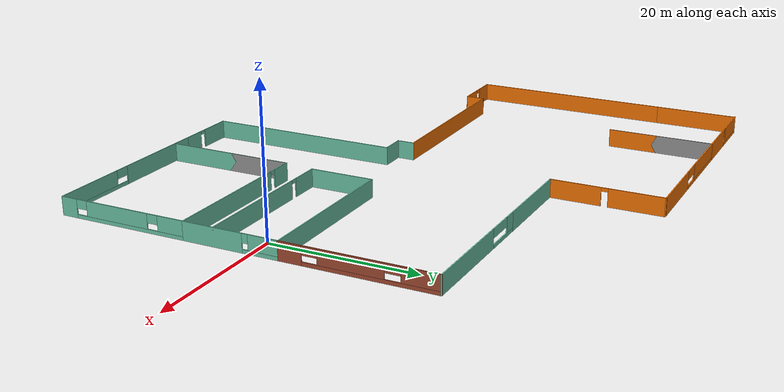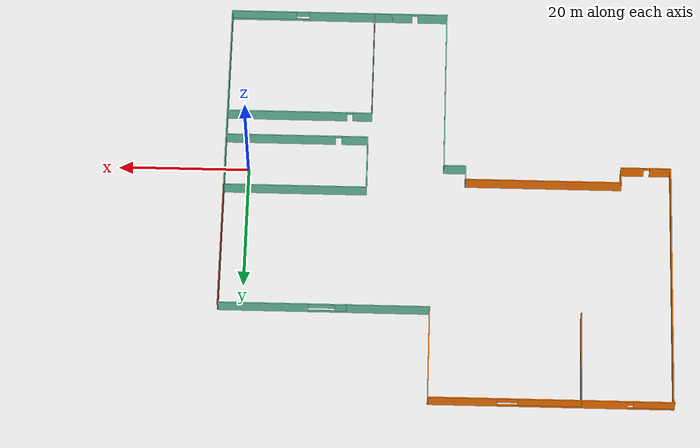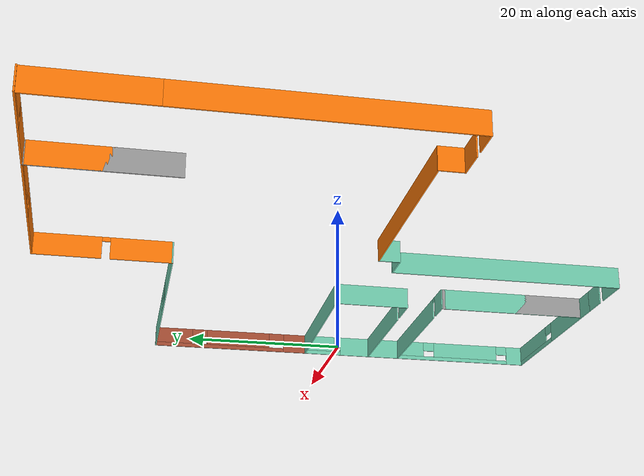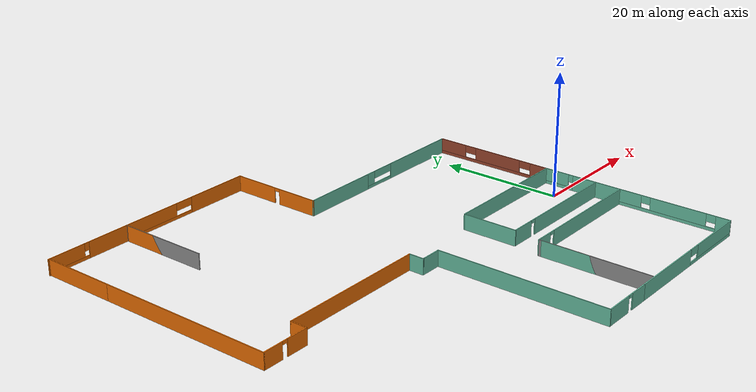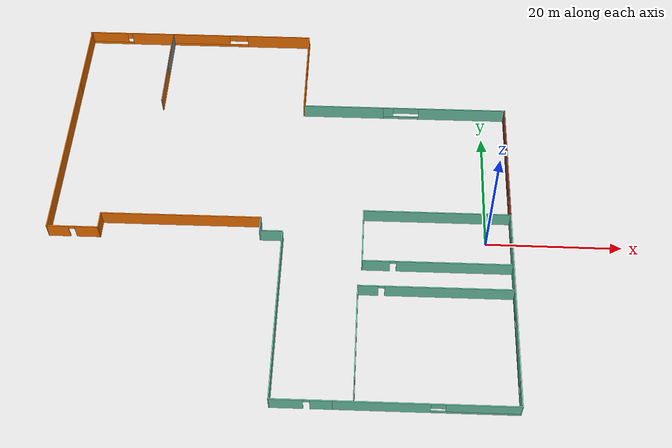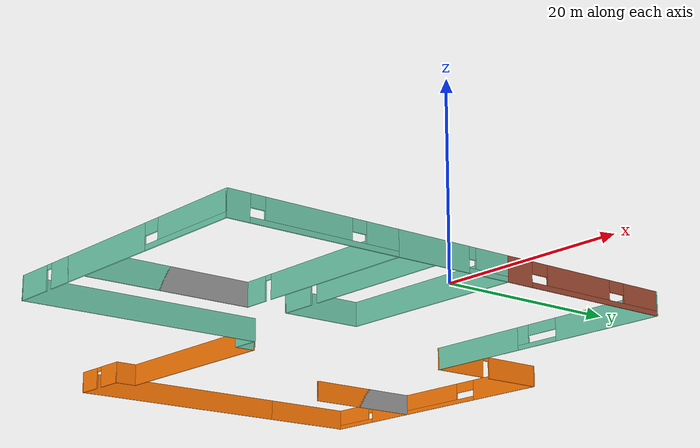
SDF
<?xml version='1.0'?>
<sdf version='1.6'>
  <model name='building1'>
    <pose frame=''>-30.6719 5.96378 0 0 -0 0</pose>
    <link name='Wall_0'>
      <collision name='Wall_0_Collision'>
        <geometry>
          <box>
            <size>28.25 0.15 2.5</size>
          </box>
        </geometry>
        <pose frame=''>0 0 1.25 0 -0 0</pose>
      </collision>
      <visual name='Wall_0_Visual'>
        <pose frame=''>0 0 1.25 0 -0 0</pose>
        <geometry>
          <box>
            <size>28.25 0.15 2.5</size>
          </box>
        </geometry>
        <material>
          <script>
            <uri>file://media/materials/scripts/gazebo.material</uri>
            <name>Gazebo/Grey</name>
          </script>
          <ambient>0.996078 0.47451 0.0196078 1</ambient>
        </material>
        <meta>
          <layer>0</layer>
        </meta>
      </visual>
      <pose frame=''>-34.175 7.575 0 0 0 -1.5708</pose>
    </link>
    <link name='Wall_1'>
      <pose frame=''>-30.375 -6.475 0 0 -0 0</pose>
      <visual name='Wall_1_Visual_0'>
        <pose frame=''>-2.22971 0 1.25 0 -0 0</pose>
        <geometry>
          <box>
            <size>3.29058 0.15 2.5</size>
          </box>
        </geometry>
        <material>
          <script>
            <uri>file://media/materials/scripts/gazebo.material</uri>
            <name>Gazebo/Grey</name>
          </script>
          <ambient>0.996078 0.47451 0.0196078 1</ambient>
        </material>
        <meta>
          <layer>0</layer>
        </meta>
      </visual>
      <collision name='Wall_1_Collision_0'>
        <geometry>
          <box>
            <size>3.29058 0.15 2.5</size>
          </box>
        </geometry>
        <pose frame=''>-2.22971 0 1.25 0 -0 0</pose>
      </collision>
      <visual name='Wall_1_Visual_1'>
        <pose frame=''>2.09529 0 1.25 0 -0 0</pose>
        <geometry>
          <box>
            <size>3.55942 0.15 2.5</size>
          </box>
        </geometry>
        <material>
          <script>
            <uri>file://media/materials/scripts/gazebo.material</uri>
            <name>Gazebo/Grey</name>
          </script>
          <ambient>0.996078 0.47451 0.0196078 1</ambient>
        </material>
        <meta>
          <layer>0</layer>
        </meta>
      </visual>
      <collision name='Wall_1_Collision_1'>
        <geometry>
          <box>
            <size>3.55942 0.15 2.5</size>
          </box>
        </geometry>
        <pose frame=''>2.09529 0 1.25 0 -0 0</pose>
      </collision>
      <visual name='Wall_1_Visual_2'>
        <pose frame=''>-0.134418 0 2.25 0 -0 0</pose>
        <geometry>
          <box>
            <size>0.9 0.15 0.5</size>
          </box>
        </geometry>
        <material>
          <script>
            <uri>file://media/materials/scripts/gazebo.material</uri>
            <name>Gazebo/Grey</name>
          </script>
          <ambient>0.996078 0.47451 0.0196078 1</ambient>
        </material>
        <meta>
          <layer>0</layer>
        </meta>
      </visual>
      <collision name='Wall_1_Collision_2'>
        <geometry>
          <box>
            <size>0.9 0.15 0.5</size>
          </box>
        </geometry>
        <pose frame=''>-0.134418 0 2.25 0 -0 0</pose>
      </collision>
    </link>
    <link name='Wall_10'>
      <pose frame=''>23.15 -15.225 0 0 -0 3.14159</pose>
      <visual name='Wall_10_Visual_0'>
        <pose frame=''>-1.95259 0 1.25 0 -0 0</pose>
        <geometry>
          <box>
            <size>18.5948 0.15 2.5</size>
          </box>
        </geometry>
        <material>
          <script>
            <uri>file://media/materials/scripts/gazebo.material</uri>
            <name>Gazebo/Grey</name>
          </script>
          <ambient>0.435294 0.796078 0.67451 1</ambient>
        </material>
        <meta>
          <layer>0</layer>
        </meta>
      </visual>
      <collision name='Wall_10_Collision_0'>
        <geometry>
          <box>
            <size>18.5948 0.15 2.5</size>
          </box>
        </geometry>
        <pose frame=''>-1.95259 0 1.25 0 -0 0</pose>
      </collision>
      <visual name='Wall_10_Visual_1'>
        <pose frame=''>9.74741 0 1.25 0 -0 0</pose>
        <geometry>
          <box>
            <size>3.00517 0.15 2.5</size>
          </box>
        </geometry>
        <material>
          <script>
            <uri>file://media/materials/scripts/gazebo.material</uri>
            <name>Gazebo/Grey</name>
          </script>
          <ambient>0.435294 0.796078 0.67451 1</ambient>
        </material>
        <meta>
          <layer>0</layer>
        </meta>
      </visual>
      <collision name='Wall_10_Collision_1'>
        <geometry>
          <box>
            <size>3.00517 0.15 2.5</size>
          </box>
        </geometry>
        <pose frame=''>9.74741 0 1.25 0 -0 0</pose>
      </collision>
      <visual name='Wall_10_Visual_2'>
        <pose frame=''>7.79483 0 2.25 0 -0 0</pose>
        <geometry>
          <box>
            <size>0.9 0.15 0.5</size>
          </box>
        </geometry>
        <material>
          <script>
            <uri>file://media/materials/scripts/gazebo.material</uri>
            <name>Gazebo/Grey</name>
          </script>
          <ambient>0.435294 0.796078 0.67451 1</ambient>
        </material>
        <meta>
          <layer>0</layer>
        </meta>
      </visual>
      <collision name='Wall_10_Collision_2'>
        <geometry>
          <box>
            <size>0.9 0.15 0.5</size>
          </box>
        </geometry>
        <pose frame=''>7.79483 0 2.25 0 -0 0</pose>
      </collision>
    </link>
    <link name='Wall_11'>
      <collision name='Wall_11_Collision'>
        <geometry>
          <box>
            <size>18 0.15 2.5</size>
          </box>
        </geometry>
        <pose frame=''>0 0 1.25 0 -0 0</pose>
      </collision>
      <visual name='Wall_11_Visual'>
        <pose frame=''>0 0 1.25 0 -0 0</pose>
        <geometry>
          <box>
            <size>18 0.15 2.5</size>
          </box>
        </geometry>
        <material>
          <script>
            <uri>file://media/materials/scripts/gazebo.material</uri>
            <name>Gazebo/Grey</name>
          </script>
          <ambient>1 1 1 1</ambient>
        </material>
        <meta>
          <layer>0</layer>
        </meta>
      </visual>
      <pose frame=''>11.975 -24.15 0 0 0 -1.5708</pose>
    </link>
    <link name='Wall_12'>
      <collision name='Wall_12_Collision'>
        <geometry>
          <box>
            <size>17.5 0.15 2.5</size>
          </box>
        </geometry>
        <pose frame=''>0 0 1.25 0 -0 0</pose>
      </collision>
      <visual name='Wall_12_Visual'>
        <pose frame=''>0 0 1.25 0 -0 0</pose>
        <geometry>
          <box>
            <size>17.5 0.15 2.5</size>
          </box>
        </geometry>
        <material>
          <script>
            <uri>file://media/materials/scripts/gazebo.material</uri>
            <name>Gazebo/Grey</name>
          </script>
          <ambient>0.435294 0.796078 0.67451 1</ambient>
        </material>
        <meta>
          <layer>0</layer>
        </meta>
      </visual>
      <pose frame=''>11.975 -24.4 0 0 -0 1.5708</pose>
    </link>
    <link name='Wall_14'>
      <pose frame=''>34.325 -8.675 0 0 -0 1.5708</pose>
      <visual name='Wall_14_Visual_0'>
        <pose frame=''>-2.47216 0 1.25 0 -0 0</pose>
        <geometry>
          <box>
            <size>8.30568 0.15 2.5</size>
          </box>
        </geometry>
        <material>
          <script>
            <uri>file://media/materials/scripts/gazebo.material</uri>
            <name>Gazebo/Grey</name>
          </script>
          <ambient>0.435294 0.796078 0.67451 1</ambient>
        </material>
        <meta>
          <layer>0</layer>
        </meta>
      </visual>
      <collision name='Wall_14_Collision_0'>
        <geometry>
          <box>
            <size>8.30568 0.15 2.5</size>
          </box>
        </geometry>
        <pose frame=''>-2.47216 0 1.25 0 -0 0</pose>
      </collision>
      <visual name='Wall_14_Visual_1'>
        <pose frame=''>4.15284 0 0.25 0 -0 0</pose>
        <geometry>
          <box>
            <size>4.94432 0.15 0.5</size>
          </box>
        </geometry>
        <material>
          <script>
            <uri>file://media/materials/scripts/gazebo.material</uri>
            <name>Gazebo/Grey</name>
          </script>
          <ambient>0.435294 0.796078 0.67451 1</ambient>
        </material>
        <meta>
          <layer>0</layer>
        </meta>
      </visual>
      <collision name='Wall_14_Collision_1'>
        <geometry>
          <box>
            <size>4.94432 0.15 0.5</size>
          </box>
        </geometry>
        <pose frame=''>4.15284 0 0.25 0 -0 0</pose>
      </collision>
      <visual name='Wall_14_Visual_2'>
        <pose frame=''>4.55284 0 1.5 0 -0 0</pose>
        <geometry>
          <box>
            <size>4.14432 0.15 2</size>
          </box>
        </geometry>
        <material>
          <script>
            <uri>file://media/materials/scripts/gazebo.material</uri>
            <name>Gazebo/Grey</name>
          </script>
          <ambient>0.435294 0.796078 0.67451 1</ambient>
        </material>
        <meta>
          <layer>0</layer>
        </meta>
      </visual>
      <collision name='Wall_14_Collision_2'>
        <geometry>
          <box>
            <size>4.14432 0.15 2</size>
          </box>
        </geometry>
        <pose frame=''>4.55284 0 1.5 0 -0 0</pose>
      </collision>
      <visual name='Wall_14_Visual_3'>
        <pose frame=''>2.08068 0 1.9 0 -0 0</pose>
        <geometry>
          <box>
            <size>0.8 0.15 1.2</size>
          </box>
        </geometry>
        <material>
          <script>
            <uri>file://media/materials/scripts/gazebo.material</uri>
            <name>Gazebo/Grey</name>
          </script>
          <ambient>0.435294 0.796078 0.67451 1</ambient>
        </material>
        <meta>
          <layer>0</layer>
        </meta>
      </visual>
      <collision name='Wall_14_Collision_3'>
        <geometry>
          <box>
            <size>0.8 0.15 1.2</size>
          </box>
        </geometry>
        <pose frame=''>2.08068 0 1.9 0 -0 0</pose>
      </collision>
    </link>
    <link name='Wall_15'>
      <collision name='Wall_15_Collision'>
        <geometry>
          <box>
            <size>22 0.15 2.5</size>
          </box>
        </geometry>
        <pose frame=''>0 0 1.25 0 -0 0</pose>
      </collision>
      <visual name='Wall_15_Visual'>
        <pose frame=''>0 0 1.25 0 -0 0</pose>
        <geometry>
          <box>
            <size>22 0.15 2.5</size>
          </box>
        </geometry>
        <material>
          <script>
            <uri>file://media/materials/scripts/gazebo.material</uri>
            <name>Gazebo/Grey</name>
          </script>
          <ambient>0.435294 0.796078 0.67451 1</ambient>
        </material>
        <meta>
          <layer>0</layer>
        </meta>
      </visual>
      <pose frame=''>23.4 -2.125 0 0 -0 3.14159</pose>
    </link>
    <link name='Wall_16'>
      <collision name='Wall_16_Collision'>
        <geometry>
          <box>
            <size>9 0.15 2.5</size>
          </box>
        </geometry>
        <pose frame=''>0 0 1.25 0 -0 0</pose>
      </collision>
      <visual name='Wall_16_Visual'>
        <pose frame=''>0 0 1.25 0 -0 0</pose>
        <geometry>
          <box>
            <size>9 0.15 2.5</size>
          </box>
        </geometry>
        <material>
          <script>
            <uri>file://media/materials/scripts/gazebo.material</uri>
            <name>Gazebo/Grey</name>
          </script>
          <ambient>0.435294 0.796078 0.67451 1</ambient>
        </material>
        <meta>
          <layer>0</layer>
        </meta>
      </visual>
      <pose frame=''>12.475 -6.55 0 0 0 -1.5708</pose>
    </link>
    <link name='Wall_17'>
      <pose frame=''>23.4 -10.975 0 0 -0 0</pose>
      <visual name='Wall_17_Visual_0'>
        <pose frame=''>-8.94755 0 1.25 0 -0 0</pose>
        <geometry>
          <box>
            <size>4.1049 0.15 2.5</size>
          </box>
        </geometry>
        <material>
          <script>
            <uri>file://media/materials/scripts/gazebo.material</uri>
            <name>Gazebo/Grey</name>
          </script>
          <ambient>0.435294 0.796078 0.67451 1</ambient>
        </material>
        <meta>
          <layer>0</layer>
        </meta>
      </visual>
      <collision name='Wall_17_Collision_0'>
        <geometry>
          <box>
            <size>4.1049 0.15 2.5</size>
          </box>
        </geometry>
        <pose frame=''>-8.94755 0 1.25 0 -0 0</pose>
      </collision>
      <visual name='Wall_17_Visual_1'>
        <pose frame=''>2.50245 0 1.25 0 -0 0</pose>
        <geometry>
          <box>
            <size>16.9951 0.15 2.5</size>
          </box>
        </geometry>
        <material>
          <script>
            <uri>file://media/materials/scripts/gazebo.material</uri>
            <name>Gazebo/Grey</name>
          </script>
          <ambient>0.435294 0.796078 0.67451 1</ambient>
        </material>
        <meta>
          <layer>0</layer>
        </meta>
      </visual>
      <collision name='Wall_17_Collision_1'>
        <geometry>
          <box>
            <size>16.9951 0.15 2.5</size>
          </box>
        </geometry>
        <pose frame=''>2.50245 0 1.25 0 -0 0</pose>
      </collision>
      <visual name='Wall_17_Visual_2'>
        <pose frame=''>-6.4451 0 2.25 0 -0 0</pose>
        <geometry>
          <box>
            <size>0.9 0.15 0.5</size>
          </box>
        </geometry>
        <material>
          <script>
            <uri>file://media/materials/scripts/gazebo.material</uri>
            <name>Gazebo/Grey</name>
          </script>
          <ambient>0.435294 0.796078 0.67451 1</ambient>
        </material>
        <meta>
          <layer>0</layer>
        </meta>
      </visual>
      <collision name='Wall_17_Collision_2'>
        <geometry>
          <box>
            <size>0.9 0.15 0.5</size>
          </box>
        </geometry>
        <pose frame=''>-6.4451 0 2.25 0 -0 0</pose>
      </collision>
    </link>
    <link name='Wall_19'>
      <pose frame=''>34.325 8.05 0 0 -0 1.5708</pose>
      <visual name='Wall_19_Visual_0'>
        <pose frame=''>-8.69186 0 1.25 0 -0 0</pose>
        <geometry>
          <box>
            <size>3.11628 0.15 2.5</size>
          </box>
        </geometry>
        <material>
          <script>
            <uri>file://media/materials/scripts/gazebo.material</uri>
            <name>Gazebo/Bricks</name>
          </script>
          <ambient>0.435294 0.796078 0.67451 1</ambient>
        </material>
        <meta>
          <layer>0</layer>
        </meta>
      </visual>
      <collision name='Wall_19_Collision_0'>
        <geometry>
          <box>
            <size>3.11628 0.15 2.5</size>
          </box>
        </geometry>
        <pose frame=''>-8.69186 0 1.25 0 -0 0</pose>
      </collision>
      <visual name='Wall_19_Visual_1'>
        <pose frame=''>1.55814 0 0.25 0 -0 0</pose>
        <geometry>
          <box>
            <size>17.3837 0.15 0.5</size>
          </box>
        </geometry>
        <material>
          <script>
            <uri>file://media/materials/scripts/gazebo.material</uri>
            <name>Gazebo/Bricks</name>
          </script>
          <ambient>0.435294 0.796078 0.67451 1</ambient>
        </material>
        <meta>
          <layer>0</layer>
        </meta>
      </visual>
      <collision name='Wall_19_Collision_1'>
        <geometry>
          <box>
            <size>17.3837 0.15 0.5</size>
          </box>
        </geometry>
        <pose frame=''>1.55814 0 0.25 0 -0 0</pose>
      </collision>
      <visual name='Wall_19_Visual_2'>
        <pose frame=''>-0.896427 0 1.5 0 -0 0</pose>
        <geometry>
          <box>
            <size>8.47458 0.15 2</size>
          </box>
        </geometry>
        <material>
          <script>
            <uri>file://media/materials/scripts/gazebo.material</uri>
            <name>Gazebo/Bricks</name>
          </script>
          <ambient>0.435294 0.796078 0.67451 1</ambient>
        </material>
        <meta>
          <layer>0</layer>
        </meta>
      </visual>
      <collision name='Wall_19_Collision_2'>
        <geometry>
          <box>
            <size>8.47458 0.15 2</size>
          </box>
        </geometry>
        <pose frame=''>-0.896427 0 1.5 0 -0 0</pose>
      </collision>
      <visual name='Wall_19_Visual_3'>
        <pose frame=''>7.79543 0 1.5 0 -0 0</pose>
        <geometry>
          <box>
            <size>4.90914 0.15 2</size>
          </box>
        </geometry>
        <material>
          <script>
            <uri>file://media/materials/scripts/gazebo.material</uri>
            <name>Gazebo/Bricks</name>
          </script>
          <ambient>0.435294 0.796078 0.67451 1</ambient>
        </material>
        <meta>
          <layer>0</layer>
        </meta>
      </visual>
      <collision name='Wall_19_Collision_3'>
        <geometry>
          <box>
            <size>4.90914 0.15 2</size>
          </box>
        </geometry>
        <pose frame=''>7.79543 0 1.5 0 -0 0</pose>
      </collision>
      <visual name='Wall_19_Visual_4'>
        <pose frame=''>-6.13372 0 1.9 0 -0 0</pose>
        <geometry>
          <box>
            <size>2 0.15 1.2</size>
          </box>
        </geometry>
        <material>
          <script>
            <uri>file://media/materials/scripts/gazebo.material</uri>
            <name>Gazebo/Bricks</name>
          </script>
          <ambient>0.435294 0.796078 0.67451 1</ambient>
        </material>
        <meta>
          <layer>0</layer>
        </meta>
      </visual>
      <collision name='Wall_19_Collision_4'>
        <geometry>
          <box>
            <size>2 0.15 1.2</size>
          </box>
        </geometry>
        <pose frame=''>-6.13372 0 1.9 0 -0 0</pose>
      </collision>
      <visual name='Wall_19_Visual_5'>
        <pose frame=''>4.34086 0 1.9 0 -0 0</pose>
        <geometry>
          <box>
            <size>2 0.15 1.2</size>
          </box>
        </geometry>
        <material>
          <script>
            <uri>file://media/materials/scripts/gazebo.material</uri>
            <name>Gazebo/Bricks</name>
          </script>
          <ambient>0.435294 0.796078 0.67451 1</ambient>
        </material>
        <meta>
          <layer>0</layer>
        </meta>
      </visual>
      <collision name='Wall_19_Collision_5'>
        <geometry>
          <box>
            <size>2 0.15 1.2</size>
          </box>
        </geometry>
        <pose frame=''>4.34086 0 1.9 0 -0 0</pose>
      </collision>
    </link>
    <link name='Wall_2'>
      <collision name='Wall_2_Collision'>
        <geometry>
          <box>
            <size>2.75 0.15 2.5</size>
          </box>
        </geometry>
        <pose frame=''>0 0 1.25 0 -0 0</pose>
      </collision>
      <visual name='Wall_2_Visual'>
        <pose frame=''>0 0 1.25 0 -0 0</pose>
        <geometry>
          <box>
            <size>2.75 0.15 2.5</size>
          </box>
        </geometry>
        <material>
          <script>
            <uri>file://media/materials/scripts/gazebo.material</uri>
            <name>Gazebo/Grey</name>
          </script>
          <ambient>0.996078 0.47451 0.0196078 1</ambient>
        </material>
        <meta>
          <layer>0</layer>
        </meta>
      </visual>
      <pose frame=''>-26.575 -5.175 0 0 -0 1.5708</pose>
    </link>
    <link name='Wall_20'>
      <pose frame=''>24.65 18.225 0 0 -0 3.14159</pose>
      <visual name='Wall_20_Visual_0'>
        <pose frame=''>-2.88254 0 1.25 0 -0 0</pose>
        <geometry>
          <box>
            <size>13.7349 0.15 2.5</size>
          </box>
        </geometry>
        <material>
          <script>
            <uri>file://media/materials/scripts/gazebo.material</uri>
            <name>Gazebo/Grey</name>
          </script>
          <ambient>0.435294 0.796078 0.67451 1</ambient>
        </material>
        <meta>
          <layer>0</layer>
        </meta>
      </visual>
      <collision name='Wall_20_Collision_0'>
        <geometry>
          <box>
            <size>13.7349 0.15 2.5</size>
          </box>
        </geometry>
        <pose frame=''>-2.88254 0 1.25 0 -0 0</pose>
      </collision>
      <visual name='Wall_20_Visual_1'>
        <pose frame=''>6.86746 0 0.25 0 -0 0</pose>
        <geometry>
          <box>
            <size>5.76509 0.15 0.5</size>
          </box>
        </geometry>
        <material>
          <script>
            <uri>file://media/materials/scripts/gazebo.material</uri>
            <name>Gazebo/Grey</name>
          </script>
          <ambient>0.435294 0.796078 0.67451 1</ambient>
        </material>
        <meta>
          <layer>0</layer>
        </meta>
      </visual>
      <collision name='Wall_20_Collision_1'>
        <geometry>
          <box>
            <size>5.76509 0.15 0.5</size>
          </box>
        </geometry>
        <pose frame=''>6.86746 0 0.25 0 -0 0</pose>
      </collision>
      <visual name='Wall_20_Visual_2'>
        <pose frame=''>8.86746 0 1.5 0 -0 0</pose>
        <geometry>
          <box>
            <size>1.76509 0.15 2</size>
          </box>
        </geometry>
        <material>
          <script>
            <uri>file://media/materials/scripts/gazebo.material</uri>
            <name>Gazebo/Grey</name>
          </script>
          <ambient>0.435294 0.796078 0.67451 1</ambient>
        </material>
        <meta>
          <layer>0</layer>
        </meta>
      </visual>
      <collision name='Wall_20_Collision_2'>
        <geometry>
          <box>
            <size>1.76509 0.15 2</size>
          </box>
        </geometry>
        <pose frame=''>8.86746 0 1.5 0 -0 0</pose>
      </collision>
      <visual name='Wall_20_Visual_3'>
        <pose frame=''>5.98491 0 1.9 0 -0 0</pose>
        <geometry>
          <box>
            <size>4 0.15 1.2</size>
          </box>
        </geometry>
        <material>
          <script>
            <uri>file://media/materials/scripts/gazebo.material</uri>
            <name>Gazebo/Grey</name>
          </script>
          <ambient>0.435294 0.796078 0.67451 1</ambient>
        </material>
        <meta>
          <layer>0</layer>
        </meta>
      </visual>
      <collision name='Wall_20_Collision_3'>
        <geometry>
          <box>
            <size>4 0.15 1.2</size>
          </box>
        </geometry>
        <pose frame=''>5.98491 0 1.9 0 -0 0</pose>
      </collision>
    </link>
    <link name='Wall_21'>
      <collision name='Wall_21_Collision'>
        <geometry>
          <box>
            <size>12.75 0.15 2.5</size>
          </box>
        </geometry>
        <pose frame=''>0 0 1.25 0 -0 0</pose>
      </collision>
      <visual name='Wall_21_Visual'>
        <pose frame=''>0 0 1.25 0 -0 0</pose>
        <geometry>
          <box>
            <size>12.75 0.15 2.5</size>
          </box>
        </geometry>
        <material>
          <script>
            <uri>file://media/materials/scripts/gazebo.material</uri>
            <name>Gazebo/Grey</name>
          </script>
          <ambient>0.435294 0.796078 0.67451 1</ambient>
        </material>
        <meta>
          <layer>0</layer>
        </meta>
      </visual>
      <pose frame=''>8.675 18.225 0 0 -0 3.14159</pose>
    </link>
    <link name='Wall_22'>
      <pose frame=''>2.375 25.775 0 0 -0 1.5708</pose>
      <visual name='Wall_22_Visual_0'>
        <pose frame=''>-4.18684 0 1.25 0 -0 0</pose>
        <geometry>
          <box>
            <size>6.87632 0.15 2.5</size>
          </box>
        </geometry>
        <material>
          <script>
            <uri>file://media/materials/scripts/gazebo.material</uri>
            <name>Gazebo/Grey</name>
          </script>
          <ambient>0.996078 0.47451 0.0196078 1</ambient>
        </material>
        <meta>
          <layer>0</layer>
        </meta>
      </visual>
      <collision name='Wall_22_Collision_0'>
        <geometry>
          <box>
            <size>6.87632 0.15 2.5</size>
          </box>
        </geometry>
        <pose frame=''>-4.18684 0 1.25 0 -0 0</pose>
      </collision>
      <visual name='Wall_22_Visual_1'>
        <pose frame=''>3.88816 0 1.25 0 -0 0</pose>
        <geometry>
          <box>
            <size>7.47368 0.15 2.5</size>
          </box>
        </geometry>
        <material>
          <script>
            <uri>file://media/materials/scripts/gazebo.material</uri>
            <name>Gazebo/Grey</name>
          </script>
          <ambient>0.996078 0.47451 0.0196078 1</ambient>
        </material>
        <meta>
          <layer>0</layer>
        </meta>
      </visual>
      <collision name='Wall_22_Collision_1'>
        <geometry>
          <box>
            <size>7.47368 0.15 2.5</size>
          </box>
        </geometry>
        <pose frame=''>3.88816 0 1.25 0 -0 0</pose>
      </collision>
      <visual name='Wall_22_Visual_2'>
        <pose frame=''>-0.298676 0 2.25 0 -0 0</pose>
        <geometry>
          <box>
            <size>0.9 0.15 0.5</size>
          </box>
        </geometry>
        <material>
          <script>
            <uri>file://media/materials/scripts/gazebo.material</uri>
            <name>Gazebo/Grey</name>
          </script>
          <ambient>0.996078 0.47451 0.0196078 1</ambient>
        </material>
        <meta>
          <layer>0</layer>
        </meta>
      </visual>
      <collision name='Wall_22_Collision_2'>
        <geometry>
          <box>
            <size>0.9 0.15 0.5</size>
          </box>
        </geometry>
        <pose frame=''>-0.298676 0 2.25 0 -0 0</pose>
      </collision>
    </link>
    <link name='Wall_23'>
      <pose frame=''>-9.05 33.325 0 0 -0 3.14159</pose>
      <visual name='Wall_23_Visual_0'>
        <pose frame=''>-6.28232 0 1.25 0 -0 0</pose>
        <geometry>
          <box>
            <size>10.4354 0.15 2.5</size>
          </box>
        </geometry>
        <material>
          <script>
            <uri>file://media/materials/scripts/gazebo.material</uri>
            <name>Gazebo/Grey</name>
          </script>
          <ambient>0.996078 0.47451 0.0196078 1</ambient>
        </material>
        <meta>
          <layer>0</layer>
        </meta>
      </visual>
      <collision name='Wall_23_Collision_0'>
        <geometry>
          <box>
            <size>10.4354 0.15 2.5</size>
          </box>
        </geometry>
        <pose frame=''>-6.28232 0 1.25 0 -0 0</pose>
      </collision>
      <visual name='Wall_23_Visual_1'>
        <pose frame=''>5.21768 0 0.25 0 -0 0</pose>
        <geometry>
          <box>
            <size>12.5646 0.15 0.5</size>
          </box>
        </geometry>
        <material>
          <script>
            <uri>file://media/materials/scripts/gazebo.material</uri>
            <name>Gazebo/Grey</name>
          </script>
          <ambient>0.996078 0.47451 0.0196078 1</ambient>
        </material>
        <meta>
          <layer>0</layer>
        </meta>
      </visual>
      <collision name='Wall_23_Collision_1'>
        <geometry>
          <box>
            <size>12.5646 0.15 0.5</size>
          </box>
        </geometry>
        <pose frame=''>5.21768 0 0.25 0 -0 0</pose>
      </collision>
      <visual name='Wall_23_Visual_2'>
        <pose frame=''>6.71768 0 1.5 0 -0 0</pose>
        <geometry>
          <box>
            <size>9.56464 0.15 2</size>
          </box>
        </geometry>
        <material>
          <script>
            <uri>file://media/materials/scripts/gazebo.material</uri>
            <name>Gazebo/Grey</name>
          </script>
          <ambient>0.996078 0.47451 0.0196078 1</ambient>
        </material>
        <meta>
          <layer>0</layer>
        </meta>
      </visual>
      <collision name='Wall_23_Collision_2'>
        <geometry>
          <box>
            <size>9.56464 0.15 2</size>
          </box>
        </geometry>
        <pose frame=''>6.71768 0 1.5 0 -0 0</pose>
      </collision>
      <visual name='Wall_23_Visual_3'>
        <pose frame=''>0.435356 0 1.9 0 -0 0</pose>
        <geometry>
          <box>
            <size>3 0.15 1.2</size>
          </box>
        </geometry>
        <material>
          <script>
            <uri>file://media/materials/scripts/gazebo.material</uri>
            <name>Gazebo/Grey</name>
          </script>
          <ambient>0.996078 0.47451 0.0196078 1</ambient>
        </material>
        <meta>
          <layer>0</layer>
        </meta>
      </visual>
      <collision name='Wall_23_Collision_3'>
        <geometry>
          <box>
            <size>3 0.15 1.2</size>
          </box>
        </geometry>
        <pose frame=''>0.435356 0 1.9 0 -0 0</pose>
      </collision>
    </link>
    <link name='Wall_24'>
      <collision name='Wall_24_Collision'>
        <geometry>
          <box>
            <size>14.75 0.15 2.5</size>
          </box>
        </geometry>
        <pose frame=''>0 0 1.25 0 -0 0</pose>
      </collision>
      <visual name='Wall_24_Visual'>
        <pose frame=''>0 0 1.25 0 -0 0</pose>
        <geometry>
          <box>
            <size>14.75 0.15 2.5</size>
          </box>
        </geometry>
        <material>
          <script>
            <uri>file://media/materials/scripts/gazebo.material</uri>
            <name>Gazebo/Grey</name>
          </script>
          <ambient>1 1 1 1</ambient>
        </material>
        <meta>
          <layer>0</layer>
        </meta>
      </visual>
      <pose frame=''>-20.475 26.025 0 0 0 -1.5708</pose>
    </link>
    <link name='Wall_25'>
      <collision name='Wall_25_Collision'>
        <geometry>
          <box>
            <size>14.5 0.15 2.5</size>
          </box>
        </geometry>
        <pose frame=''>0 0 1.25 0 -0 0</pose>
      </collision>
      <visual name='Wall_25_Visual'>
        <pose frame=''>0 0 1.25 0 -0 0</pose>
        <geometry>
          <box>
            <size>14.5 0.15 2.5</size>
          </box>
        </geometry>
        <material>
          <script>
            <uri>file://media/materials/scripts/gazebo.material</uri>
            <name>Gazebo/Grey</name>
          </script>
          <ambient>0.996078 0.47451 0.0196078 1</ambient>
        </material>
        <meta>
          <layer>0</layer>
        </meta>
      </visual>
      <pose frame=''>-20.475 25.9 0 0 -0 1.5708</pose>
    </link>
    <link name='Wall_26'>
      <collision name='Wall_26_Collision'>
        <geometry>
          <box>
            <size>0.4 0.15 2.5</size>
          </box>
        </geometry>
        <pose frame=''>0 0 1.25 0 -0 0</pose>
      </collision>
      <visual name='Wall_26_Visual'>
        <pose frame=''>0 0 1.25 0 -0 0</pose>
        <geometry>
          <box>
            <size>0.4 0.15 2.5</size>
          </box>
        </geometry>
        <material>
          <script>
            <uri>file://media/materials/scripts/gazebo.material</uri>
            <name>Gazebo/Grey</name>
          </script>
          <ambient>1 1 1 1</ambient>
        </material>
        <meta>
          <layer>0</layer>
        </meta>
      </visual>
      <pose frame=''>-20.475 33.2 0 0 -0 1.5708</pose>
    </link>
    <link name='Wall_27'>
      <pose frame=''>-27.4 33.325 0 0 -0 3.14159</pose>
      <visual name='Wall_27_Visual_0'>
        <pose frame=''>-3.49206 0 1.25 0 -0 0</pose>
        <geometry>
          <box>
            <size>7.01587 0.15 2.5</size>
          </box>
        </geometry>
        <material>
          <script>
            <uri>file://media/materials/scripts/gazebo.material</uri>
            <name>Gazebo/Grey</name>
          </script>
          <ambient>0.996078 0.47451 0.0196078 1</ambient>
        </material>
        <meta>
          <layer>0</layer>
        </meta>
      </visual>
      <collision name='Wall_27_Collision_0'>
        <geometry>
          <box>
            <size>7.01587 0.15 2.5</size>
          </box>
        </geometry>
        <pose frame=''>-3.49206 0 1.25 0 -0 0</pose>
      </collision>
      <visual name='Wall_27_Visual_1'>
        <pose frame=''>3.50794 0 0.25 0 -0 0</pose>
        <geometry>
          <box>
            <size>6.98413 0.15 0.5</size>
          </box>
        </geometry>
        <material>
          <script>
            <uri>file://media/materials/scripts/gazebo.material</uri>
            <name>Gazebo/Grey</name>
          </script>
          <ambient>0.996078 0.47451 0.0196078 1</ambient>
        </material>
        <meta>
          <layer>0</layer>
        </meta>
      </visual>
      <collision name='Wall_27_Collision_1'>
        <geometry>
          <box>
            <size>6.98413 0.15 0.5</size>
          </box>
        </geometry>
        <pose frame=''>3.50794 0 0.25 0 -0 0</pose>
      </collision>
      <visual name='Wall_27_Visual_2'>
        <pose frame=''>3.90794 0 1.5 0 -0 0</pose>
        <geometry>
          <box>
            <size>6.18413 0.15 2</size>
          </box>
        </geometry>
        <material>
          <script>
            <uri>file://media/materials/scripts/gazebo.material</uri>
            <name>Gazebo/Grey</name>
          </script>
          <ambient>0.996078 0.47451 0.0196078 1</ambient>
        </material>
        <meta>
          <layer>0</layer>
        </meta>
      </visual>
      <collision name='Wall_27_Collision_2'>
        <geometry>
          <box>
            <size>6.18413 0.15 2</size>
          </box>
        </geometry>
        <pose frame=''>3.90794 0 1.5 0 -0 0</pose>
      </collision>
      <visual name='Wall_27_Visual_3'>
        <pose frame=''>0.415874 0 1.9 0 -0 0</pose>
        <geometry>
          <box>
            <size>0.8 0.15 1.2</size>
          </box>
        </geometry>
        <material>
          <script>
            <uri>file://media/materials/scripts/gazebo.material</uri>
            <name>Gazebo/Grey</name>
          </script>
          <ambient>0.996078 0.47451 0.0196078 1</ambient>
        </material>
        <meta>
          <layer>0</layer>
        </meta>
      </visual>
      <collision name='Wall_27_Collision_3'>
        <geometry>
          <box>
            <size>0.8 0.15 1.2</size>
          </box>
        </geometry>
        <pose frame=''>0.415874 0 1.9 0 -0 0</pose>
      </collision>
    </link>
    <link name='Wall_3'>
      <collision name='Wall_3_Collision'>
        <geometry>
          <box>
            <size>24 0.15 2.5</size>
          </box>
        </geometry>
        <pose frame=''>0 0 1.25 0 -0 0</pose>
      </collision>
      <visual name='Wall_3_Visual'>
        <pose frame=''>0 0 1.25 0 -0 0</pose>
        <geometry>
          <box>
            <size>24 0.15 2.5</size>
          </box>
        </geometry>
        <material>
          <script>
            <uri>file://media/materials/scripts/gazebo.material</uri>
            <name>Gazebo/Grey</name>
          </script>
          <ambient>0.996078 0.47451 0.0196078 1</ambient>
        </material>
        <meta>
          <layer>0</layer>
        </meta>
      </visual>
      <pose frame=''>-14.65 -3.875 0 0 -0 0</pose>
    </link>
    <link name='Wall_30'>
      <collision name='Wall_30_Collision'>
        <geometry>
          <box>
            <size>11.75 0.15 2.5</size>
          </box>
        </geometry>
        <pose frame=''>0 0 1.25 0 -0 0</pose>
      </collision>
      <visual name='Wall_30_Visual'>
        <pose frame=''>0 0 1.25 0 -0 0</pose>
        <geometry>
          <box>
            <size>11.75 0.15 2.5</size>
          </box>
        </geometry>
        <material>
          <script>
            <uri>file://media/materials/scripts/gazebo.material</uri>
            <name>Gazebo/Grey</name>
          </script>
          <ambient>0.996078 0.47451 0.0196078 1</ambient>
        </material>
        <meta>
          <layer>0</layer>
        </meta>
      </visual>
      <pose frame=''>-34.175 27.425 0 0 -0 1.5708</pose>
    </link>
    <link name='Wall_4'>
      <collision name='Wall_4_Collision'>
        <geometry>
          <box>
            <size>2.5 0.15 2.5</size>
          </box>
        </geometry>
        <pose frame=''>0 0 1.25 0 -0 0</pose>
      </collision>
      <visual name='Wall_4_Visual'>
        <pose frame=''>0 0 1.25 0 -0 0</pose>
        <geometry>
          <box>
            <size>2.5 0.15 2.5</size>
          </box>
        </geometry>
        <material>
          <script>
            <uri>file://media/materials/scripts/gazebo.material</uri>
            <name>Gazebo/Grey</name>
          </script>
          <ambient>0.435294 0.796078 0.67451 1</ambient>
        </material>
        <meta>
          <layer>0</layer>
        </meta>
      </visual>
      <pose frame=''>-2.725 -5.05 0 0 0 -1.5708</pose>
    </link>
    <link name='Wall_5'>
      <collision name='Wall_5_Collision'>
        <geometry>
          <box>
            <size>3.5 0.15 2.5</size>
          </box>
        </geometry>
        <pose frame=''>0 0 1.25 0 -0 0</pose>
      </collision>
      <visual name='Wall_5_Visual'>
        <pose frame=''>0 0 1.25 0 -0 0</pose>
        <geometry>
          <box>
            <size>3.5 0.15 2.5</size>
          </box>
        </geometry>
        <material>
          <script>
            <uri>file://media/materials/scripts/gazebo.material</uri>
            <name>Gazebo/Grey</name>
          </script>
          <ambient>0.435294 0.796078 0.67451 1</ambient>
        </material>
        <meta>
          <layer>0</layer>
        </meta>
      </visual>
      <pose frame=''>-1.05 -6.225 0 0 -0 0</pose>
    </link>
    <link name='Wall_6'>
      <collision name='Wall_6_Collision'>
        <geometry>
          <box>
            <size>27.25 0.15 2.5</size>
          </box>
        </geometry>
        <pose frame=''>0 0 1.25 0 -0 0</pose>
      </collision>
      <visual name='Wall_6_Visual'>
        <pose frame=''>0 0 1.25 0 -0 0</pose>
        <geometry>
          <box>
            <size>27.25 0.15 2.5</size>
          </box>
        </geometry>
        <material>
          <script>
            <uri>file://media/materials/scripts/gazebo.material</uri>
            <name>Gazebo/Grey</name>
          </script>
          <ambient>0.435294 0.796078 0.67451 1</ambient>
        </material>
        <meta>
          <layer>0</layer>
        </meta>
      </visual>
      <pose frame=''>0.625002 -19.775 0 0 0 -1.5708</pose>
    </link>
    <link name='Wall_7'>
      <pose frame=''>4.925 -33.325 0 0 -0 0</pose>
      <visual name='Wall_7_Visual_0'>
        <pose frame=''>-2.04468 0 1.25 0 -0 0</pose>
        <geometry>
          <box>
            <size>4.66063 0.15 2.5</size>
          </box>
        </geometry>
        <material>
          <script>
            <uri>file://media/materials/scripts/gazebo.material</uri>
            <name>Gazebo/Grey</name>
          </script>
          <ambient>0.435294 0.796078 0.67451 1</ambient>
        </material>
        <meta>
          <layer>0</layer>
        </meta>
      </visual>
      <collision name='Wall_7_Collision_0'>
        <geometry>
          <box>
            <size>4.66063 0.15 2.5</size>
          </box>
        </geometry>
        <pose frame=''>-2.04468 0 1.25 0 -0 0</pose>
      </collision>
      <visual name='Wall_7_Visual_1'>
        <pose frame=''>2.78031 0 1.25 0 -0 0</pose>
        <geometry>
          <box>
            <size>3.18937 0.15 2.5</size>
          </box>
        </geometry>
        <material>
          <script>
            <uri>file://media/materials/scripts/gazebo.material</uri>
            <name>Gazebo/Grey</name>
          </script>
          <ambient>0.435294 0.796078 0.67451 1</ambient>
        </material>
        <meta>
          <layer>0</layer>
        </meta>
      </visual>
      <collision name='Wall_7_Collision_1'>
        <geometry>
          <box>
            <size>3.18937 0.15 2.5</size>
          </box>
        </geometry>
        <pose frame=''>2.78031 0 1.25 0 -0 0</pose>
      </collision>
      <visual name='Wall_7_Visual_2'>
        <pose frame=''>0.73563 0 2.25 0 -0 0</pose>
        <geometry>
          <box>
            <size>0.9 0.15 0.5</size>
          </box>
        </geometry>
        <material>
          <script>
            <uri>file://media/materials/scripts/gazebo.material</uri>
            <name>Gazebo/Grey</name>
          </script>
          <ambient>0.435294 0.796078 0.67451 1</ambient>
        </material>
        <meta>
          <layer>0</layer>
        </meta>
      </visual>
      <collision name='Wall_7_Collision_2'>
        <geometry>
          <box>
            <size>0.9 0.15 0.5</size>
          </box>
        </geometry>
        <pose frame=''>0.73563 0 2.25 0 -0 0</pose>
      </collision>
    </link>
    <link name='Wall_8'>
      <pose frame=''>21.775 -33.325 0 0 -0 0</pose>
      <visual name='Wall_8_Visual_0'>
        <pose frame=''>-6.07614 0 1.25 0 -0 0</pose>
        <geometry>
          <box>
            <size>13.0977 0.15 2.5</size>
          </box>
        </geometry>
        <material>
          <script>
            <uri>file://media/materials/scripts/gazebo.material</uri>
            <name>Gazebo/Grey</name>
          </script>
          <ambient>0.435294 0.796078 0.67451 1</ambient>
        </material>
        <meta>
          <layer>0</layer>
        </meta>
      </visual>
      <collision name='Wall_8_Collision_0'>
        <geometry>
          <box>
            <size>13.0977 0.15 2.5</size>
          </box>
        </geometry>
        <pose frame=''>-6.07614 0 1.25 0 -0 0</pose>
      </collision>
      <visual name='Wall_8_Visual_1'>
        <pose frame=''>6.54886 0 0.25 0 -0 0</pose>
        <geometry>
          <box>
            <size>12.1523 0.15 0.5</size>
          </box>
        </geometry>
        <material>
          <script>
            <uri>file://media/materials/scripts/gazebo.material</uri>
            <name>Gazebo/Grey</name>
          </script>
          <ambient>0.435294 0.796078 0.67451 1</ambient>
        </material>
        <meta>
          <layer>0</layer>
        </meta>
      </visual>
      <collision name='Wall_8_Collision_1'>
        <geometry>
          <box>
            <size>12.1523 0.15 0.5</size>
          </box>
        </geometry>
        <pose frame=''>6.54886 0 0.25 0 -0 0</pose>
      </collision>
      <visual name='Wall_8_Visual_2'>
        <pose frame=''>7.54886 0 1.5 0 -0 0</pose>
        <geometry>
          <box>
            <size>10.1523 0.15 2</size>
          </box>
        </geometry>
        <material>
          <script>
            <uri>file://media/materials/scripts/gazebo.material</uri>
            <name>Gazebo/Grey</name>
          </script>
          <ambient>0.435294 0.796078 0.67451 1</ambient>
        </material>
        <meta>
          <layer>0</layer>
        </meta>
      </visual>
      <collision name='Wall_8_Collision_2'>
        <geometry>
          <box>
            <size>10.1523 0.15 2</size>
          </box>
        </geometry>
        <pose frame=''>7.54886 0 1.5 0 -0 0</pose>
      </collision>
      <visual name='Wall_8_Visual_3'>
        <pose frame=''>1.47272 0 1.9 0 -0 0</pose>
        <geometry>
          <box>
            <size>2 0.15 1.2</size>
          </box>
        </geometry>
        <material>
          <script>
            <uri>file://media/materials/scripts/gazebo.material</uri>
            <name>Gazebo/Grey</name>
          </script>
          <ambient>0.435294 0.796078 0.67451 1</ambient>
        </material>
        <meta>
          <layer>0</layer>
        </meta>
      </visual>
      <collision name='Wall_8_Collision_3'>
        <geometry>
          <box>
            <size>2 0.15 1.2</size>
          </box>
        </geometry>
        <pose frame=''>1.47272 0 1.9 0 -0 0</pose>
      </collision>
    </link>
    <link name='Wall_9'>
      <pose frame=''>34.325 -24.275 0 0 -0 1.5708</pose>
      <visual name='Wall_9_Visual_0'>
        <pose frame=''>-7.9629 0 1.25 0 -0 0</pose>
        <geometry>
          <box>
            <size>2.3242 0.15 2.5</size>
          </box>
        </geometry>
        <material>
          <script>
            <uri>file://media/materials/scripts/gazebo.material</uri>
            <name>Gazebo/Grey</name>
          </script>
          <ambient>0.435294 0.796078 0.67451 1</ambient>
        </material>
        <meta>
          <layer>0</layer>
        </meta>
      </visual>
      <collision name='Wall_9_Collision_0'>
        <geometry>
          <box>
            <size>2.3242 0.15 2.5</size>
          </box>
        </geometry>
        <pose frame=''>-7.9629 0 1.25 0 -0 0</pose>
      </collision>
      <visual name='Wall_9_Visual_1'>
        <pose frame=''>1.1621 0 0.25 0 -0 0</pose>
        <geometry>
          <box>
            <size>15.9258 0.15 0.5</size>
          </box>
        </geometry>
        <material>
          <script>
            <uri>file://media/materials/scripts/gazebo.material</uri>
            <name>Gazebo/Grey</name>
          </script>
          <ambient>0.435294 0.796078 0.67451 1</ambient>
        </material>
        <meta>
          <layer>0</layer>
        </meta>
      </visual>
      <collision name='Wall_9_Collision_1'>
        <geometry>
          <box>
            <size>15.9258 0.15 0.5</size>
          </box>
        </geometry>
        <pose frame=''>1.1621 0 0.25 0 -0 0</pose>
      </collision>
      <visual name='Wall_9_Visual_2'>
        <pose frame=''>-0.731672 0 1.5 0 -0 0</pose>
        <geometry>
          <box>
            <size>9.13825 0.15 2</size>
          </box>
        </geometry>
        <material>
          <script>
            <uri>file://media/materials/scripts/gazebo.material</uri>
            <name>Gazebo/Grey</name>
          </script>
          <ambient>0.435294 0.796078 0.67451 1</ambient>
        </material>
        <meta>
          <layer>0</layer>
        </meta>
      </visual>
      <collision name='Wall_9_Collision_2'>
        <geometry>
          <box>
            <size>9.13825 0.15 2</size>
          </box>
        </geometry>
        <pose frame=''>-0.731672 0 1.5 0 -0 0</pose>
      </collision>
      <visual name='Wall_9_Visual_3'>
        <pose frame=''>7.23123 0 1.5 0 -0 0</pose>
        <geometry>
          <box>
            <size>3.78755 0.15 2</size>
          </box>
        </geometry>
        <material>
          <script>
            <uri>file://media/materials/scripts/gazebo.material</uri>
            <name>Gazebo/Grey</name>
          </script>
          <ambient>0.435294 0.796078 0.67451 1</ambient>
        </material>
        <meta>
          <layer>0</layer>
        </meta>
      </visual>
      <collision name='Wall_9_Collision_3'>
        <geometry>
          <box>
            <size>3.78755 0.15 2</size>
          </box>
        </geometry>
        <pose frame=''>7.23123 0 1.5 0 -0 0</pose>
      </collision>
      <visual name='Wall_9_Visual_4'>
        <pose frame=''>-6.0508 0 1.9 0 -0 0</pose>
        <geometry>
          <box>
            <size>1.5 0.15 1.2</size>
          </box>
        </geometry>
        <material>
          <script>
            <uri>file://media/materials/scripts/gazebo.material</uri>
            <name>Gazebo/Grey</name>
          </script>
          <ambient>0.435294 0.796078 0.67451 1</ambient>
        </material>
        <meta>
          <layer>0</layer>
        </meta>
      </visual>
      <collision name='Wall_9_Collision_4'>
        <geometry>
          <box>
            <size>1.5 0.15 1.2</size>
          </box>
        </geometry>
        <pose frame=''>-6.0508 0 1.9 0 -0 0</pose>
      </collision>
      <visual name='Wall_9_Visual_5'>
        <pose frame=''>4.58745 0 1.9 0 -0 0</pose>
        <geometry>
          <box>
            <size>1.5 0.15 1.2</size>
          </box>
        </geometry>
        <material>
          <script>
            <uri>file://media/materials/scripts/gazebo.material</uri>
            <name>Gazebo/Grey</name>
          </script>
          <ambient>0.435294 0.796078 0.67451 1</ambient>
        </material>
        <meta>
          <layer>0</layer>
        </meta>
      </visual>
      <collision name='Wall_9_Collision_5'>
        <geometry>
          <box>
            <size>1.5 0.15 1.2</size>
          </box>
        </geometry>
        <pose frame=''>4.58745 0 1.9 0 -0 0</pose>
      </collision>
    </link>
    <static>1</static>
  </model>
</sdf>
